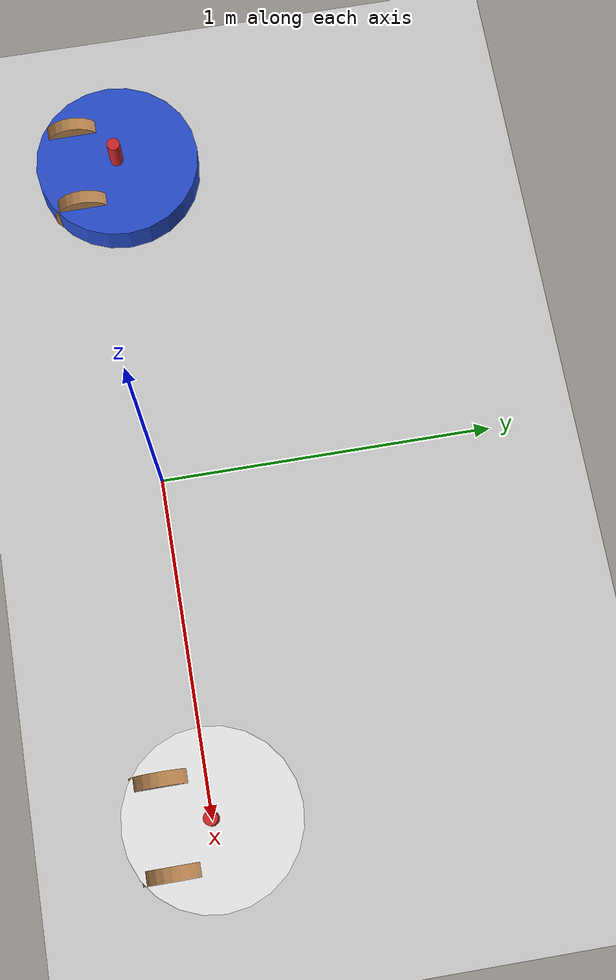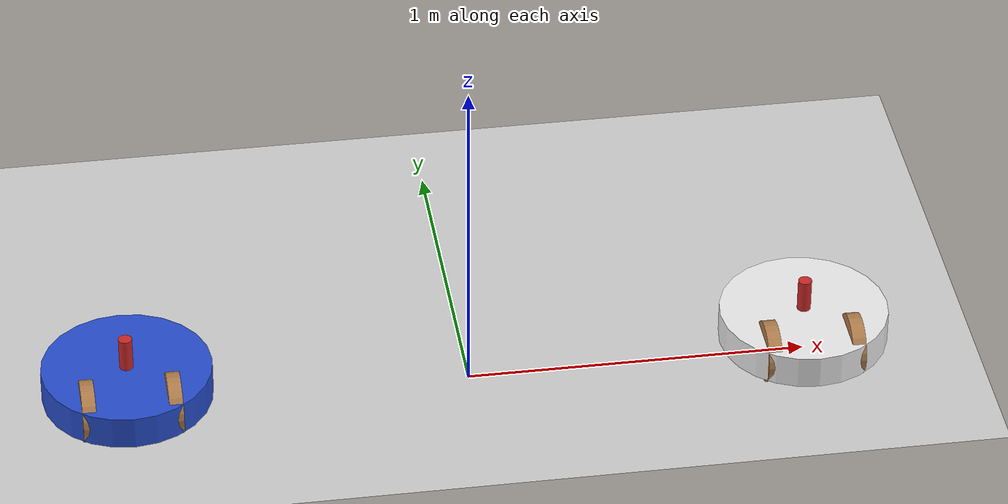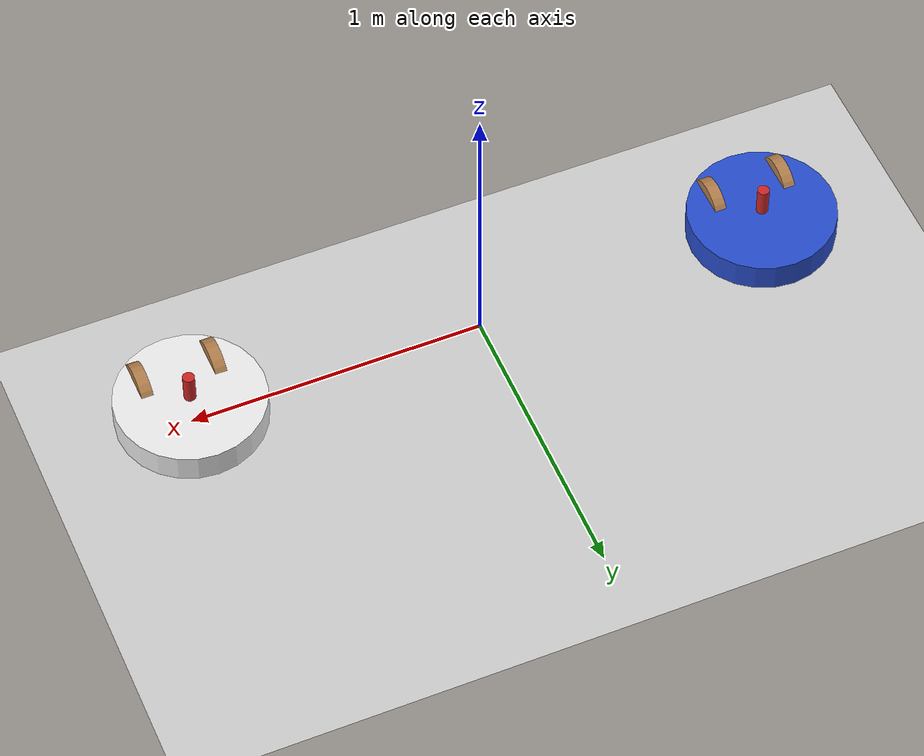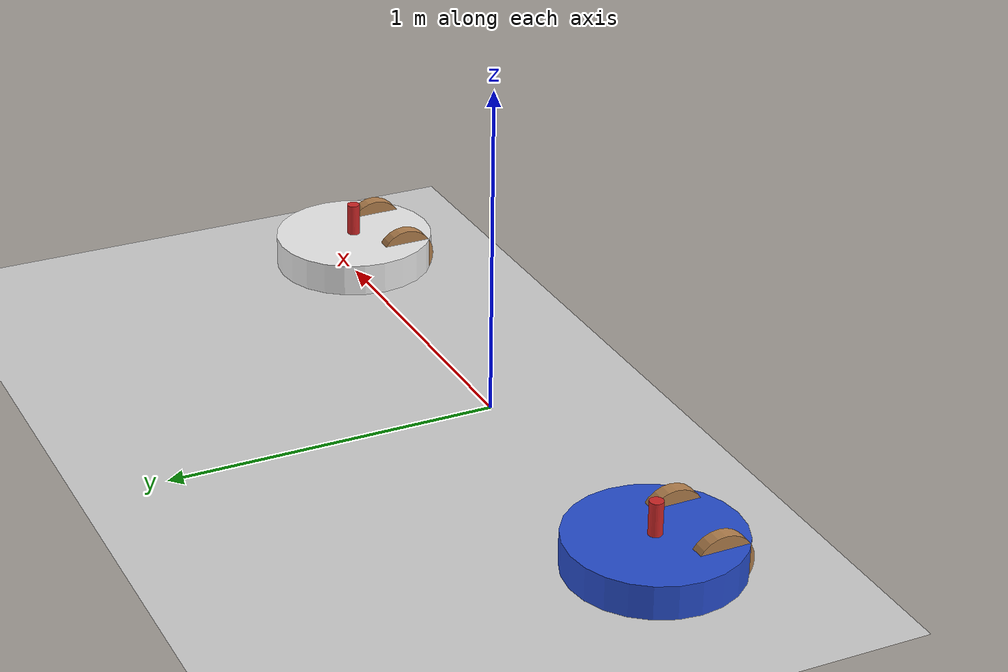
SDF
<sdf version="1.6">
 <world name="default">
  <light name="sun" type="directional">
   <pose>0 0 10 0 -0 0</pose>
   <diffuse>0.8 0.8 0.8 1</diffuse>
   <specular>0.1 0.1 0.1 1</specular>
   <attenuation>
    <range>1000</range>
    <constant>0.9</constant>
    <linear>0.01</linear>
    <quadratic>0.001</quadratic>
   </attenuation>
   <direction>-0.5 0.5 -1</direction>
  </light>
  <model name="ground_plane">
   <static>1</static>
   <link name="link">
    <collision name="collision">
     <geometry><plane><normal>0 0 1</normal><size>100 100</size></plane></geometry>
     <surface><friction><ode><mu>1</mu><mu2>1</mu2></ode></friction></surface>
    </collision>
    <visual name="visual">
     <cast_shadows>0</cast_shadows>
     <geometry><plane><normal>0 0 1</normal><size>100 100</size></plane></geometry>
     <material>
      <script><uri>file://media/materials/scripts/gazebo.material</uri><name>Gazebo/Grey</name></script>
     </material>
    </visual>
   </link>
  </model>
  <gravity>0 0 -9.8</gravity>
  <magnetic_field>6e-06 2.3e-05 -4.2e-05</magnetic_field>
  <atmosphere type="adiabatic"/>
  <physics name="default_physics" default="0" type="ode">
   <max_step_size>0.001</max_step_size>
   <real_time_factor>1</real_time_factor>
   <real_time_update_rate>1000</real_time_update_rate>
  </physics>
  <scene><ambient>0.4 0.4 0.4 1</ambient><background>0.7 0.7 0.7 1</background><shadows>1</shadows></scene>
  <spherical_coordinates>
   <surface_model>EARTH_WGS84</surface_model>
   <latitude_deg>0</latitude_deg>
   <longitude_deg>0</longitude_deg>
   <elevation>0</elevation>
   <heading_deg>0</heading_deg>
  </spherical_coordinates>
  <model name="logger1">
   <link name="logger-chassis">
    <inertial>
     <pose>0.005952 0 -0.002381 0 -0 0</pose>
     <mass>2.1</mass>
     <inertia>
      <ixx>0.0332188</ixx>
      <ixy>0</ixy>
      <ixz>0.000595238</ixz>
      <iyy>0.0347069</iyy>
      <iyz>0</iyz>
      <izz>0.0640521</izz>
     </inertia>
    </inertial>
    <collision name="logger-chassis_collision">
     <geometry><cylinder><length>0.1</length><radius>0.25</radius></cylinder></geometry>
     <surface><friction><ode><mu>0.5</mu><mu2>0.5</mu2></ode></friction></surface>
    </collision>
    <collision name="logger-chassis_fixed_joint_lump__logger-caster_collision_1">
     <pose>0.125 0 -0.05 0 -0 0</pose>
     <geometry><sphere><radius>0.04</radius></sphere></geometry>
     <surface><friction><ode><mu>0</mu><mu2>0</mu2></ode></friction></surface>
    </collision>
    <visual name="logger-chassis_visual">
     <geometry><cylinder><length>0.1</length><radius>0.25</radius></cylinder></geometry>
     <material>
      <script><name>Gazebo/White</name><uri>file://media/materials/scripts/gazebo.material</uri></script>
     </material>
    </visual>
    <visual name="logger-chassis_fixed_joint_lump__logger-caster_visual_1">
     <pose>0.125 0 -0.05 0 -0 0</pose>
     <geometry><sphere><radius>0.04</radius></sphere></geometry>
     <material>
      <script><name>Gazebo/Grey</name><uri>file://media/materials/scripts/gazebo.material</uri></script>
     </material>
    </visual>
   </link>
   <link name="logger-hat">
    <pose>0 0 0.1 0 -0 0</pose>
    <inertial>
     <pose>0 0 0.04 0 -0 0</pose>
     <mass>0.5</mass>
     <inertia>
      <ixx>0.000466667</ixx>
      <ixy>0</ixy>
      <ixz>0</ixz>
      <iyy>0.000466667</iyy>
      <iyz>0</iyz>
      <izz>0.0001</izz>
     </inertia>
    </inertial>
    <collision name="logger-hat_collision">
     <geometry><cylinder><length>0.1</length><radius>0.02</radius></cylinder></geometry>
     <surface><friction><ode><mu>0</mu><mu2>0</mu2></ode></friction></surface>
    </collision>
    <visual name="logger-hat_visual">
     <geometry><cylinder><length>0.1</length><radius>0.02</radius></cylinder></geometry>
     <material>
      <script><name>Gazebo/Red</name><uri>file://media/materials/scripts/gazebo.material</uri></script>
     </material>
    </visual>
   </link>
   <joint name="logger-chassis2hat" type="revolute">
    <child>logger-hat</child>
    <parent>logger-chassis</parent>
    <axis>
     <xyz>0 0 1</xyz>
     <limit><lower>-1e+16</lower><upper>1e+16</upper></limit>
     <dynamics><spring_reference>0</spring_reference><spring_stiffness>0</spring_stiffness></dynamics>
     <use_parent_model_frame>0</use_parent_model_frame>
    </axis>
   </joint>
   <link name="logger-left_wheel">
    <pose>-0.125 -0.125 0 0 -0 0</pose>
    <inertial>
     <pose>0 0 0 1.5708 -0 0</pose>
     <mass>0.5</mass>
     <inertia>
      <ixx>0.00107917</ixx>
      <ixy>0</ixy>
      <ixz>0</ixz>
      <iyy>0.00107917</iyy>
      <iyz>0</iyz>
      <izz>0.002025</izz>
     </inertia>
    </inertial>
    <collision name="logger-left_wheel_collision">
     <pose>0 0 0 1.5708 -0 0</pose>
     <geometry><cylinder><length>0.04</length><radius>0.09</radius></cylinder></geometry>
     <surface><friction><ode><mu>0.99</mu><mu2>0.99</mu2></ode></friction></surface>
    </collision>
    <visual name="logger-left_wheel_visual">
     <pose>0 0 0 1.5708 -0 0</pose>
     <geometry><cylinder><length>0.04</length><radius>0.09</radius></cylinder></geometry>
     <material>
      <script><name>Gazebo/Wood</name><uri>file://media/materials/scripts/gazebo.material</uri></script>
     </material>
    </visual>
   </link>
   <joint name="logger-chassis2left_wheel" type="revolute">
    <child>logger-left_wheel</child>
    <parent>logger-chassis</parent>
    <axis>
     <xyz>0 1 0</xyz>
     <limit><lower>-1e+16</lower><upper>1e+16</upper></limit>
     <dynamics><spring_reference>0</spring_reference><spring_stiffness>0</spring_stiffness></dynamics>
     <use_parent_model_frame>0</use_parent_model_frame>
    </axis>
   </joint>
   <link name="logger-right_wheel">
    <pose>-0.125 0.125 0 0 -0 0</pose>
    <inertial>
     <pose>0 0 0 1.5708 -0 0</pose>
     <mass>0.5</mass>
     <inertia>
      <ixx>0.00107917</ixx>
      <ixy>0</ixy>
      <ixz>0</ixz>
      <iyy>0.00107917</iyy>
      <iyz>0</iyz>
      <izz>0.002025</izz>
     </inertia>
    </inertial>
    <collision name="logger-right_wheel_collision">
     <pose>0 0 0 1.5708 -0 0</pose>
     <geometry><cylinder><length>0.04</length><radius>0.09</radius></cylinder></geometry>
     <surface><friction><ode><mu>0.99</mu><mu2>0.99</mu2></ode></friction></surface>
    </collision>
    <visual name="logger-right_wheel_visual">
     <pose>0 0 0 1.5708 -0 0</pose>
     <geometry><cylinder><length>0.04</length><radius>0.09</radius></cylinder></geometry>
     <material>
      <script><name>Gazebo/Wood</name><uri>file://media/materials/scripts/gazebo.material</uri></script>
     </material>
    </visual>
   </link>
   <joint name="logger-chassis2right_wheel" type="revolute">
    <child>logger-right_wheel</child>
    <parent>logger-chassis</parent>
    <axis>
     <xyz>0 1 0</xyz>
     <limit><lower>-1e+16</lower><upper>1e+16</upper></limit>
     <dynamics><spring_reference>0</spring_reference><spring_stiffness>0</spring_stiffness></dynamics>
     <use_parent_model_frame>0</use_parent_model_frame>
    </axis>
   </joint>
   <static>0</static>
   <plugin name="mecanum_controller" filename="libgazebo_ros_planar_move.so">
    <alwaysOn>1</alwaysOn>
    <updateRate>100.0</updateRate>
    <robotNamespace>/</robotNamespace>
    <leftFrontJoint>base_to_wheel1</leftFrontJoint>
    <rightFrontJoint>base_to_wheel3</rightFrontJoint>
    <leftRearJoint>base_to_wheel2</leftRearJoint>
    <rightRearJoint>base_to_wheel4</rightRearJoint>
    <wheelSeparation>0.26</wheelSeparation>
    <wheelDiameter>0.12</wheelDiameter>
    <torque>2</torque>
    <commandTopic>logger1/cmd_vel</commandTopic>
    <odometryTopic>logger1/odom</odometryTopic>
    <odometryFrame>odom</odometryFrame>
    <robotBaseFrame>dummy</robotBaseFrame>
    <broadcastTF>1</broadcastTF>
   </plugin>
   <pose>0.99985 0.006618 0.09 0 1e-06 1.57465</pose>
  </model>
  <model name="logger0">
   <link name="logger-chassis">
    <inertial>
     <pose>0.005952 0 -0.002381 0 -0 0</pose>
     <mass>2.1</mass>
     <inertia>
      <ixx>0.0332188</ixx>
      <ixy>0</ixy>
      <ixz>0.000595238</ixz>
      <iyy>0.0347069</iyy>
      <iyz>0</iyz>
      <izz>0.0640521</izz>
     </inertia>
    </inertial>
    <collision name="logger-chassis_collision">
     <geometry><cylinder><length>0.1</length><radius>0.25</radius></cylinder></geometry>
     <surface><friction><ode><mu>0.5</mu><mu2>0.5</mu2></ode></friction></surface>
    </collision>
    <collision name="logger-chassis_fixed_joint_lump__logger-caster_collision_1">
     <pose>0.125 0 -0.05 0 -0 0</pose>
     <geometry><sphere><radius>0.04</radius></sphere></geometry>
     <surface><friction><ode><mu>0</mu><mu2>0</mu2></ode></friction></surface>
    </collision>
    <visual name="logger-chassis_visual">
     <geometry><cylinder><length>0.1</length><radius>0.25</radius></cylinder></geometry>
     <material>
      <script><name>Gazebo/Blue</name><uri>file://media/materials/scripts/gazebo.material</uri></script>
     </material>
    </visual>
    <visual name="logger-chassis_fixed_joint_lump__logger-caster_visual_1">
     <pose>0.125 0 -0.05 0 -0 0</pose>
     <geometry><sphere><radius>0.04</radius></sphere></geometry>
     <material>
      <script><name>Gazebo/Grey</name><uri>file://media/materials/scripts/gazebo.material</uri></script>
     </material>
    </visual>
   </link>
   <link name="logger-hat">
    <pose>0 0 0.1 0 -0 0</pose>
    <inertial>
     <pose>0 0 0.04 0 -0 0</pose>
     <mass>0.5</mass>
     <inertia>
      <ixx>0.000466667</ixx>
      <ixy>0</ixy>
      <ixz>0</ixz>
      <iyy>0.000466667</iyy>
      <iyz>0</iyz>
      <izz>0.0001</izz>
     </inertia>
    </inertial>
    <collision name="logger-hat_collision">
     <geometry><cylinder><length>0.1</length><radius>0.02</radius></cylinder></geometry>
     <surface><friction><ode><mu>0</mu><mu2>0</mu2></ode></friction></surface>
    </collision>
    <visual name="logger-hat_visual">
     <geometry><cylinder><length>0.1</length><radius>0.02</radius></cylinder></geometry>
     <material>
      <script><name>Gazebo/Red</name><uri>file://media/materials/scripts/gazebo.material</uri></script>
     </material>
    </visual>
   </link>
   <joint name="logger-chassis2hat" type="revolute">
    <child>logger-hat</child>
    <parent>logger-chassis</parent>
    <axis>
     <xyz>0 0 1</xyz>
     <limit><lower>-1e+16</lower><upper>1e+16</upper></limit>
     <dynamics><spring_reference>0</spring_reference><spring_stiffness>0</spring_stiffness></dynamics>
     <use_parent_model_frame>0</use_parent_model_frame>
    </axis>
   </joint>
   <link name="logger-left_wheel">
    <pose>-0.125 -0.125 0 0 -0 0</pose>
    <inertial>
     <pose>0 0 0 1.5708 -0 0</pose>
     <mass>0.5</mass>
     <inertia>
      <ixx>0.00107917</ixx>
      <ixy>0</ixy>
      <ixz>0</ixz>
      <iyy>0.00107917</iyy>
      <iyz>0</iyz>
      <izz>0.002025</izz>
     </inertia>
    </inertial>
    <collision name="logger-left_wheel_collision">
     <pose>0 0 0 1.5708 -0 0</pose>
     <geometry><cylinder><length>0.04</length><radius>0.09</radius></cylinder></geometry>
     <surface><friction><ode><mu>0.99</mu><mu2>0.99</mu2></ode></friction></surface>
    </collision>
    <visual name="logger-left_wheel_visual">
     <pose>0 0 0 1.5708 -0 0</pose>
     <geometry><cylinder><length>0.04</length><radius>0.09</radius></cylinder></geometry>
     <material>
      <script><name>Gazebo/Wood</name><uri>file://media/materials/scripts/gazebo.material</uri></script>
     </material>
    </visual>
   </link>
   <joint name="logger-chassis2left_wheel" type="revolute">
    <child>logger-left_wheel</child>
    <parent>logger-chassis</parent>
    <axis>
     <xyz>0 1 0</xyz>
     <limit><lower>-1e+16</lower><upper>1e+16</upper></limit>
     <dynamics><spring_reference>0</spring_reference><spring_stiffness>0</spring_stiffness></dynamics>
     <use_parent_model_frame>0</use_parent_model_frame>
    </axis>
   </joint>
   <link name="logger-right_wheel">
    <pose>-0.125 0.125 0 0 -0 0</pose>
    <inertial>
     <pose>0 0 0 1.5708 -0 0</pose>
     <mass>0.5</mass>
     <inertia>
      <ixx>0.00107917</ixx>
      <ixy>0</ixy>
      <ixz>0</ixz>
      <iyy>0.00107917</iyy>
      <iyz>0</iyz>
      <izz>0.002025</izz>
     </inertia>
    </inertial>
    <collision name="logger-right_wheel_collision">
     <pose>0 0 0 1.5708 -0 0</pose>
     <geometry><cylinder><length>0.04</length><radius>0.09</radius></cylinder></geometry>
     <surface><friction><ode><mu>0.99</mu><mu2>0.99</mu2></ode></friction></surface>
    </collision>
    <visual name="logger-right_wheel_visual">
     <pose>0 0 0 1.5708 -0 0</pose>
     <geometry><cylinder><length>0.04</length><radius>0.09</radius></cylinder></geometry>
     <material>
      <script><name>Gazebo/Wood</name><uri>file://media/materials/scripts/gazebo.material</uri></script>
     </material>
    </visual>
   </link>
   <joint name="logger-chassis2right_wheel" type="revolute">
    <child>logger-right_wheel</child>
    <parent>logger-chassis</parent>
    <axis>
     <xyz>0 1 0</xyz>
     <limit><lower>-1e+16</lower><upper>1e+16</upper></limit>
     <dynamics><spring_reference>0</spring_reference><spring_stiffness>0</spring_stiffness></dynamics>
     <use_parent_model_frame>0</use_parent_model_frame>
    </axis>
   </joint>
   <static>0</static>
   <plugin name="differential_drive_controller" filename="libgazebo_ros_diff_drive.so">
    <legacyMode>0</legacyMode>
    <alwaysOn>1</alwaysOn>
    <updateRate>100</updateRate>
    <leftJoint>logger-chassis2left_wheel</leftJoint>
    <rightJoint>logger-chassis2right_wheel</rightJoint>
    <wheelSeparation>0.25</wheelSeparation>
    <wheelDiameter>0.18</wheelDiameter>
    <wheelTorque>1</wheelTorque>
    <commandTopic>logger0/cmd_vel</commandTopic>
    <odometryTopic>odom</odometryTopic>
    <odometryFrame>odom</odometryFrame>
    <robotBaseFrame>logger-chassis</robotBaseFrame>
    <robotNamespace>/</robotNamespace>
   </plugin>
   <pose>-1.00033 0.012701 0.089998 0 1.4e-05 1.57936</pose>
  </model>
 </world>
</sdf>
